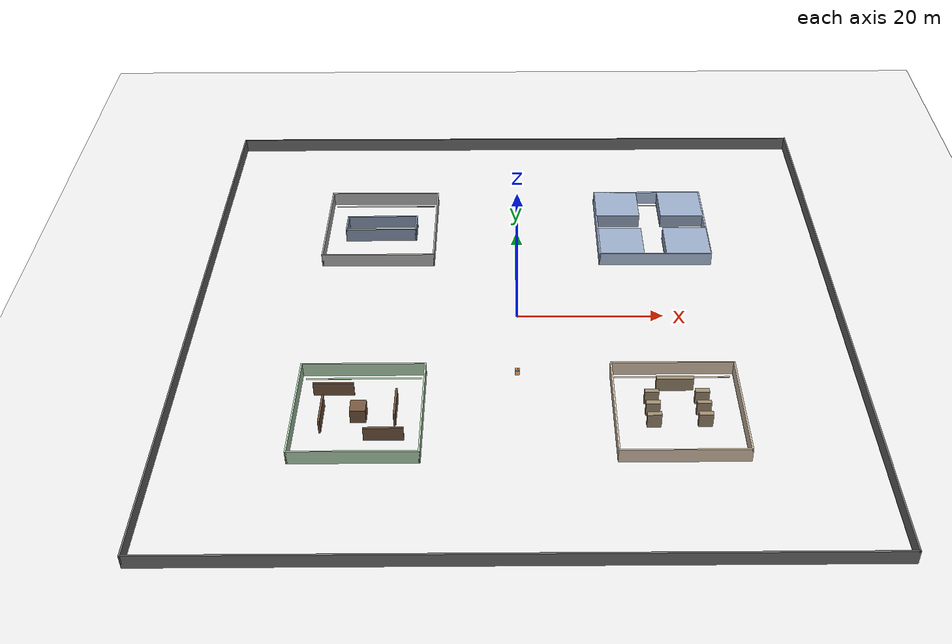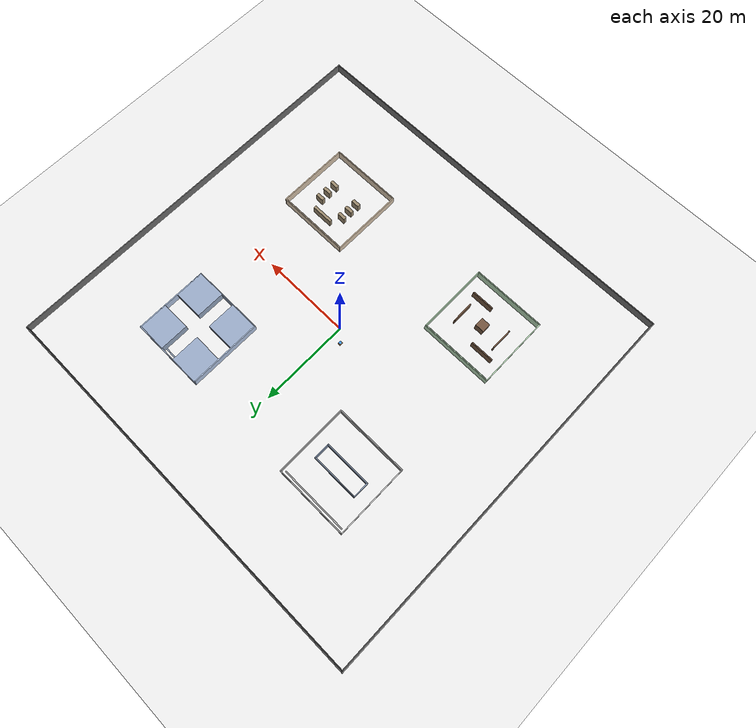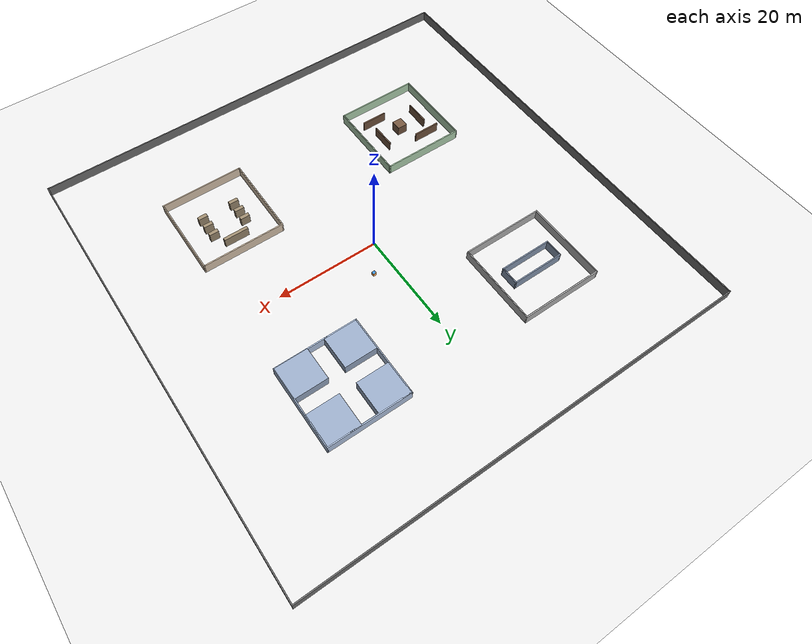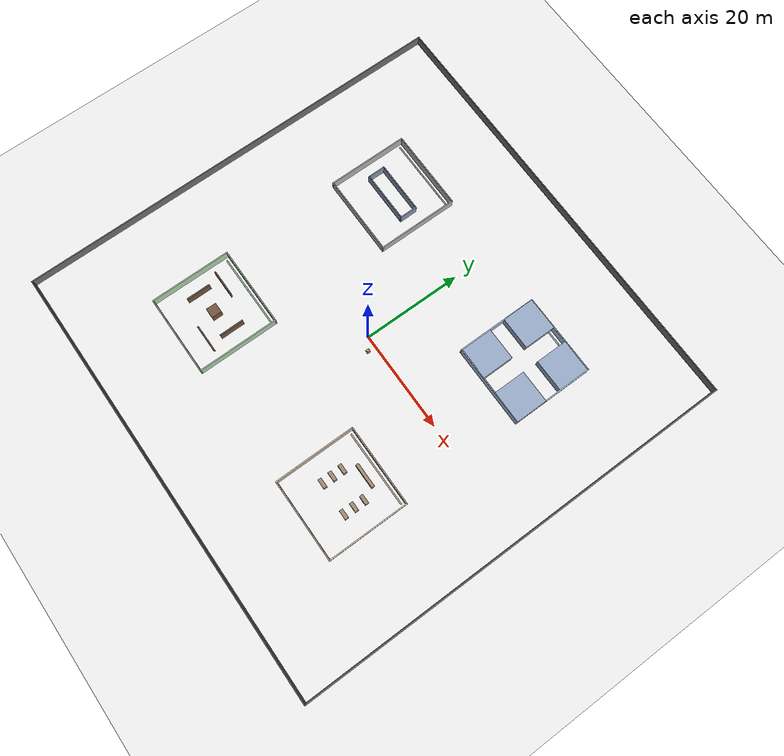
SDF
<sdf version="1.9">
 <world name="big4_dynamic">
  <physics name="1ms" type="ignored">
   <max_step_size>0.001</max_step_size>
   <real_time_factor>1</real_time_factor>
   <real_time_update_rate>1000</real_time_update_rate>
  </physics>
  <plugin name="ignition::gazebo::systems::Physics" filename="ignition-gazebo-physics-system"/>
  <plugin name="ignition::gazebo::systems::UserCommands" filename="ignition-gazebo-user-commands-system"/>
  <plugin name="ignition::gazebo::systems::SceneBroadcaster" filename="ignition-gazebo-scene-broadcaster-system"/>
  <plugin name="ignition::gazebo::systems::Contact" filename="ignition-gazebo-contact-system"/>
  <gravity>0 0 -9.8</gravity>
  <scene>
   <ambient>0.45 0.45 0.45 1</ambient>
   <background>0.78 0.78 0.78 1</background>
   <shadows>true</shadows>
  </scene>
  <light name="sun" type="directional">
   <pose>0 0 16 0 0 0</pose>
   <intensity>1.1</intensity>
   <direction>-0.45 0.15 -0.88</direction>
   <diffuse>0.95 0.95 0.95 1</diffuse>
   <specular>0.2 0.2 0.2 1</specular>
  </light>
  <model name="ground_plane">
   <static>true</static>
   <link name="link">
    <collision name="collision">
     <geometry><plane><normal>0 0 1</normal><size>140.0 140.0</size></plane></geometry>
    </collision>
    <visual name="visual">
     <geometry><plane><normal>0 0 1</normal><size>140.0 140.0</size></plane></geometry>
     <material>
      <ambient>0.84 0.84 0.84 1</ambient>
      <diffuse>0.84 0.84 0.84 1</diffuse>
      <specular>0.2 0.2 0.2 1</specular>
     </material>
    </visual>
   </link>
  </model>
  <model name="outer_border">
   <static>true</static>
   <link name="wall_west">
    <pose>-44.000 0.000 1.000 0.000 0.000 0.000</pose>
    <collision name="col"><geometry><box><size>0.200 88.200 2.000</size></box></geometry></collision>
    <visual name="vis">
     <geometry><box><size>0.200 88.200 2.000</size></box></geometry>
     <material><ambient>0.45 0.45 0.45 1</ambient><diffuse>0.45 0.45 0.45 1</diffuse></material>
    </visual>
   </link>
   <link name="wall_east">
    <pose>44.000 0.000 1.000 0.000 0.000 0.000</pose>
    <collision name="col"><geometry><box><size>0.200 88.200 2.000</size></box></geometry></collision>
    <visual name="vis">
     <geometry><box><size>0.200 88.200 2.000</size></box></geometry>
     <material><ambient>0.45 0.45 0.45 1</ambient><diffuse>0.45 0.45 0.45 1</diffuse></material>
    </visual>
   </link>
   <link name="wall_north">
    <pose>0.000 44.000 1.000 0.000 0.000 0.000</pose>
    <collision name="col"><geometry><box><size>88.200 0.200 2.000</size></box></geometry></collision>
    <visual name="vis">
     <geometry><box><size>88.200 0.200 2.000</size></box></geometry>
     <material><ambient>0.45 0.45 0.45 1</ambient><diffuse>0.45 0.45 0.45 1</diffuse></material>
    </visual>
   </link>
   <link name="wall_south">
    <pose>0.000 -44.000 1.000 0.000 0.000 0.000</pose>
    <collision name="col"><geometry><box><size>88.200 0.200 2.000</size></box></geometry></collision>
    <visual name="vis">
     <geometry><box><size>88.200 0.200 2.000</size></box></geometry>
     <material><ambient>0.45 0.45 0.45 1</ambient><diffuse>0.45 0.45 0.45 1</diffuse></material>
    </visual>
   </link>
  </model>
  <model name="corridor_frame">
   <static>true</static>
   <link name="west">
    <pose>-28.000 20.000 1.000 0.000 0.000 0.000</pose>
    <collision name="col"><geometry><box><size>0.200 16.200 2.000</size></box></geometry></collision>
    <visual name="vis">
     <geometry><box><size>0.200 16.200 2.000</size></box></geometry>
     <material><ambient>0.73 0.73 0.73 1</ambient><diffuse>0.73 0.73 0.73 1</diffuse></material>
    </visual>
   </link>
   <link name="east">
    <pose>-12.000 20.000 1.000 0.000 0.000 0.000</pose>
    <collision name="col"><geometry><box><size>0.200 16.200 2.000</size></box></geometry></collision>
    <visual name="vis">
     <geometry><box><size>0.200 16.200 2.000</size></box></geometry>
     <material><ambient>0.73 0.73 0.73 1</ambient><diffuse>0.73 0.73 0.73 1</diffuse></material>
    </visual>
   </link>
   <link name="north">
    <pose>-20.000 28.000 1.000 0.000 0.000 0.000</pose>
    <collision name="col"><geometry><box><size>16.200 0.200 2.000</size></box></geometry></collision>
    <visual name="vis">
     <geometry><box><size>16.200 0.200 2.000</size></box></geometry>
     <material><ambient>0.73 0.73 0.73 1</ambient><diffuse>0.73 0.73 0.73 1</diffuse></material>
    </visual>
   </link>
   <link name="south">
    <pose>-20.000 12.000 1.000 0.000 0.000 0.000</pose>
    <collision name="col"><geometry><box><size>16.200 0.200 2.000</size></box></geometry></collision>
    <visual name="vis">
     <geometry><box><size>16.200 0.200 2.000</size></box></geometry>
     <material><ambient>0.73 0.73 0.73 1</ambient><diffuse>0.73 0.73 0.73 1</diffuse></material>
    </visual>
   </link>
  </model>
  <model name="corridor_marker">
   <static>true</static>
   <pose>-20.000 27.300 0.01 0 0 0</pose>
   <link name="link">
    <visual name="vis">
     <geometry><box><size>15.000 0.25 0.02</size></box></geometry>
     <material><ambient>0.73 0.73 0.73 1</ambient><diffuse>0.73 0.73 0.73 1</diffuse></material>
    </visual>
   </link>
  </model>
  <model name="intersection_frame">
   <static>true</static>
   <link name="west">
    <pose>12.000 20.000 1.000 0.000 0.000 0.000</pose>
    <collision name="col"><geometry><box><size>0.200 16.200 2.000</size></box></geometry></collision>
    <visual name="vis">
     <geometry><box><size>0.200 16.200 2.000</size></box></geometry>
     <material><ambient>0.72 0.80 0.92 1</ambient><diffuse>0.72 0.80 0.92 1</diffuse></material>
    </visual>
   </link>
   <link name="east">
    <pose>28.000 20.000 1.000 0.000 0.000 0.000</pose>
    <collision name="col"><geometry><box><size>0.200 16.200 2.000</size></box></geometry></collision>
    <visual name="vis">
     <geometry><box><size>0.200 16.200 2.000</size></box></geometry>
     <material><ambient>0.72 0.80 0.92 1</ambient><diffuse>0.72 0.80 0.92 1</diffuse></material>
    </visual>
   </link>
   <link name="north">
    <pose>20.000 28.000 1.000 0.000 0.000 0.000</pose>
    <collision name="col"><geometry><box><size>16.200 0.200 2.000</size></box></geometry></collision>
    <visual name="vis">
     <geometry><box><size>16.200 0.200 2.000</size></box></geometry>
     <material><ambient>0.72 0.80 0.92 1</ambient><diffuse>0.72 0.80 0.92 1</diffuse></material>
    </visual>
   </link>
   <link name="south">
    <pose>20.000 12.000 1.000 0.000 0.000 0.000</pose>
    <collision name="col"><geometry><box><size>16.200 0.200 2.000</size></box></geometry></collision>
    <visual name="vis">
     <geometry><box><size>16.200 0.200 2.000</size></box></geometry>
     <material><ambient>0.72 0.80 0.92 1</ambient><diffuse>0.72 0.80 0.92 1</diffuse></material>
    </visual>
   </link>
  </model>
  <model name="intersection_marker">
   <static>true</static>
   <pose>20.000 27.300 0.01 0 0 0</pose>
   <link name="link">
    <visual name="vis">
     <geometry><box><size>15.000 0.25 0.02</size></box></geometry>
     <material><ambient>0.72 0.80 0.92 1</ambient><diffuse>0.72 0.80 0.92 1</diffuse></material>
    </visual>
   </link>
  </model>
  <model name="office_frame">
   <static>true</static>
   <link name="west">
    <pose>-28.000 -20.000 1.000 0.000 0.000 0.000</pose>
    <collision name="col"><geometry><box><size>0.200 16.200 2.000</size></box></geometry></collision>
    <visual name="vis">
     <geometry><box><size>0.200 16.200 2.000</size></box></geometry>
     <material><ambient>0.72 0.86 0.72 1</ambient><diffuse>0.72 0.86 0.72 1</diffuse></material>
    </visual>
   </link>
   <link name="east">
    <pose>-12.000 -20.000 1.000 0.000 0.000 0.000</pose>
    <collision name="col"><geometry><box><size>0.200 16.200 2.000</size></box></geometry></collision>
    <visual name="vis">
     <geometry><box><size>0.200 16.200 2.000</size></box></geometry>
     <material><ambient>0.72 0.86 0.72 1</ambient><diffuse>0.72 0.86 0.72 1</diffuse></material>
    </visual>
   </link>
   <link name="north">
    <pose>-20.000 -12.000 1.000 0.000 0.000 0.000</pose>
    <collision name="col"><geometry><box><size>16.200 0.200 2.000</size></box></geometry></collision>
    <visual name="vis">
     <geometry><box><size>16.200 0.200 2.000</size></box></geometry>
     <material><ambient>0.72 0.86 0.72 1</ambient><diffuse>0.72 0.86 0.72 1</diffuse></material>
    </visual>
   </link>
   <link name="south">
    <pose>-20.000 -28.000 1.000 0.000 0.000 0.000</pose>
    <collision name="col"><geometry><box><size>16.200 0.200 2.000</size></box></geometry></collision>
    <visual name="vis">
     <geometry><box><size>16.200 0.200 2.000</size></box></geometry>
     <material><ambient>0.72 0.86 0.72 1</ambient><diffuse>0.72 0.86 0.72 1</diffuse></material>
    </visual>
   </link>
  </model>
  <model name="office_marker">
   <static>true</static>
   <pose>-20.000 -12.700 0.01 0 0 0</pose>
   <link name="link">
    <visual name="vis">
     <geometry><box><size>15.000 0.25 0.02</size></box></geometry>
     <material><ambient>0.72 0.86 0.72 1</ambient><diffuse>0.72 0.86 0.72 1</diffuse></material>
    </visual>
   </link>
  </model>
  <model name="classroom_frame">
   <static>true</static>
   <link name="west">
    <pose>12.000 -20.000 1.000 0.000 0.000 0.000</pose>
    <collision name="col"><geometry><box><size>0.200 16.200 2.000</size></box></geometry></collision>
    <visual name="vis">
     <geometry><box><size>0.200 16.200 2.000</size></box></geometry>
     <material><ambient>0.88 0.80 0.70 1</ambient><diffuse>0.88 0.80 0.70 1</diffuse></material>
    </visual>
   </link>
   <link name="east">
    <pose>28.000 -20.000 1.000 0.000 0.000 0.000</pose>
    <collision name="col"><geometry><box><size>0.200 16.200 2.000</size></box></geometry></collision>
    <visual name="vis">
     <geometry><box><size>0.200 16.200 2.000</size></box></geometry>
     <material><ambient>0.88 0.80 0.70 1</ambient><diffuse>0.88 0.80 0.70 1</diffuse></material>
    </visual>
   </link>
   <link name="north">
    <pose>20.000 -12.000 1.000 0.000 0.000 0.000</pose>
    <collision name="col"><geometry><box><size>16.200 0.200 2.000</size></box></geometry></collision>
    <visual name="vis">
     <geometry><box><size>16.200 0.200 2.000</size></box></geometry>
     <material><ambient>0.88 0.80 0.70 1</ambient><diffuse>0.88 0.80 0.70 1</diffuse></material>
    </visual>
   </link>
   <link name="south">
    <pose>20.000 -28.000 1.000 0.000 0.000 0.000</pose>
    <collision name="col"><geometry><box><size>16.200 0.200 2.000</size></box></geometry></collision>
    <visual name="vis">
     <geometry><box><size>16.200 0.200 2.000</size></box></geometry>
     <material><ambient>0.88 0.80 0.70 1</ambient><diffuse>0.88 0.80 0.70 1</diffuse></material>
    </visual>
   </link>
  </model>
  <model name="classroom_marker">
   <static>true</static>
   <pose>20.000 -12.700 0.01 0 0 0</pose>
   <link name="link">
    <visual name="vis">
     <geometry><box><size>15.000 0.25 0.02</size></box></geometry>
     <material><ambient>0.88 0.80 0.70 1</ambient><diffuse>0.88 0.80 0.70 1</diffuse></material>
    </visual>
   </link>
  </model>
  <model name="corridor_inner_walls">
   <static>true</static>
   <link name="north_wall">
    <pose>-20.000 21.700 1.000 0 0 0</pose>
    <collision name="c"><geometry><box><size>10.400 0.200 2.000</size></box></geometry></collision>
    <visual name="v">
     <geometry><box><size>10.400 0.200 2.000</size></box></geometry>
     <material><ambient>0.55 0.62 0.72 1</ambient><diffuse>0.55 0.62 0.72 1</diffuse></material>
    </visual>
   </link>
   <link name="south_wall">
    <pose>-20.000 18.300 1.000 0 0 0</pose>
    <collision name="c"><geometry><box><size>10.400 0.200 2.000</size></box></geometry></collision>
    <visual name="v">
     <geometry><box><size>10.400 0.200 2.000</size></box></geometry>
     <material><ambient>0.55 0.62 0.72 1</ambient><diffuse>0.55 0.62 0.72 1</diffuse></material>
    </visual>
   </link>
   <link name="west_cap">
    <pose>-25.100 20.000 1.000 0 0 0</pose>
    <collision name="c"><geometry><box><size>0.200 3.600 2.000</size></box></geometry></collision>
    <visual name="v">
     <geometry><box><size>0.200 3.600 2.000</size></box></geometry>
     <material><ambient>0.55 0.62 0.72 1</ambient><diffuse>0.55 0.62 0.72 1</diffuse></material>
    </visual>
   </link>
   <link name="east_cap">
    <pose>-14.900 20.000 1.000 0 0 0</pose>
    <collision name="c"><geometry><box><size>0.200 3.600 2.000</size></box></geometry></collision>
    <visual name="v">
     <geometry><box><size>0.200 3.600 2.000</size></box></geometry>
     <material><ambient>0.55 0.62 0.72 1</ambient><diffuse>0.55 0.62 0.72 1</diffuse></material>
    </visual>
   </link>
  </model>
  <model name="intersection_corner_blocks">
   <static>true</static>
   <link name="corner_0">
    <pose>15.200 15.200 1.000 0.000 0.000 0.000</pose>
    <collision name="col"><geometry><box><size>6.400 6.400 2.000</size></box></geometry></collision>
    <visual name="vis">
     <geometry><box><size>6.400 6.400 2.000</size></box></geometry>
     <material><ambient>0.60 0.67 0.78 1</ambient><diffuse>0.60 0.67 0.78 1</diffuse></material>
    </visual>
   </link>
   <link name="corner_1">
    <pose>15.200 24.800 1.000 0.000 0.000 0.000</pose>
    <collision name="col"><geometry><box><size>6.400 6.400 2.000</size></box></geometry></collision>
    <visual name="vis">
     <geometry><box><size>6.400 6.400 2.000</size></box></geometry>
     <material><ambient>0.60 0.67 0.78 1</ambient><diffuse>0.60 0.67 0.78 1</diffuse></material>
    </visual>
   </link>
   <link name="corner_2">
    <pose>24.800 15.200 1.000 0.000 0.000 0.000</pose>
    <collision name="col"><geometry><box><size>6.400 6.400 2.000</size></box></geometry></collision>
    <visual name="vis">
     <geometry><box><size>6.400 6.400 2.000</size></box></geometry>
     <material><ambient>0.60 0.67 0.78 1</ambient><diffuse>0.60 0.67 0.78 1</diffuse></material>
    </visual>
   </link>
   <link name="corner_3">
    <pose>24.800 24.800 1.000 0.000 0.000 0.000</pose>
    <collision name="col"><geometry><box><size>6.400 6.400 2.000</size></box></geometry></collision>
    <visual name="vis">
     <geometry><box><size>6.400 6.400 2.000</size></box></geometry>
     <material><ambient>0.60 0.67 0.78 1</ambient><diffuse>0.60 0.67 0.78 1</diffuse></material>
    </visual>
   </link>
  </model>
  <model name="office_fixed_structures">
   <static>true</static>
   <link name="center_island">
    <pose>-20.000 -20.000 1.000 0 0 0</pose>
    <collision name="c"><geometry><box><size>2.0 2.0 2.000</size></box></geometry></collision>
    <visual name="v">
     <geometry><box><size>2.0 2.0 2.000</size></box></geometry>
     <material><ambient>0.46 0.34 0.25 1</ambient><diffuse>0.46 0.34 0.25 1</diffuse></material>
    </visual>
   </link>
   <link name="north_partition">
    <pose>-23.500 -15.800 1.000 0 0 0</pose>
    <collision name="c"><geometry><box><size>5.2 0.25 2.000</size></box></geometry></collision>
    <visual name="v">
     <geometry><box><size>5.2 0.25 2.000</size></box></geometry>
     <material><ambient>0.46 0.34 0.25 1</ambient><diffuse>0.46 0.34 0.25 1</diffuse></material>
    </visual>
   </link>
   <link name="south_partition">
    <pose>-16.600 -24.000 1.000 0 0 0</pose>
    <collision name="c"><geometry><box><size>5.0 0.25 2.000</size></box></geometry></collision>
    <visual name="v">
     <geometry><box><size>5.0 0.25 2.000</size></box></geometry>
     <material><ambient>0.46 0.34 0.25 1</ambient><diffuse>0.46 0.34 0.25 1</diffuse></material>
    </visual>
   </link>
   <link name="west_partition">
    <pose>-24.600 -20.400 1.000 0 0 0</pose>
    <collision name="c"><geometry><box><size>0.25 4.8 2.000</size></box></geometry></collision>
    <visual name="v">
     <geometry><box><size>0.25 4.8 2.000</size></box></geometry>
     <material><ambient>0.46 0.34 0.25 1</ambient><diffuse>0.46 0.34 0.25 1</diffuse></material>
    </visual>
   </link>
   <link name="east_partition">
    <pose>-15.400 -19.200 1.000 0 0 0</pose>
    <collision name="c"><geometry><box><size>0.25 4.8 2.000</size></box></geometry></collision>
    <visual name="v">
     <geometry><box><size>0.25 4.8 2.000</size></box></geometry>
     <material><ambient>0.46 0.34 0.25 1</ambient><diffuse>0.46 0.34 0.25 1</diffuse></material>
    </visual>
   </link>
  </model>
  <model name="classroom_fixed_structures">
   <static>true</static>
   <link name="front_podium">
    <pose>20.000 -15.000 1.000 0 0 0</pose>
    <collision name="c"><geometry><box><size>4.8 0.6 2.000</size></box></geometry></collision>
    <visual name="v">
     <geometry><box><size>4.8 0.6 2.000</size></box></geometry>
     <material><ambient>0.62 0.55 0.44 1</ambient><diffuse>0.62 0.55 0.44 1</diffuse></material>
    </visual>
   </link>
   <link name="desk_0">
    <pose>16.800 -17.500 1.000 0 0 0</pose>
    <collision name="c"><geometry><box><size>1.8 0.7 2.000</size></box></geometry></collision>
    <visual name="v">
     <geometry><box><size>1.8 0.7 2.000</size></box></geometry>
     <material><ambient>0.62 0.55 0.44 1</ambient><diffuse>0.62 0.55 0.44 1</diffuse></material>
    </visual>
   </link>
   <link name="desk_1">
    <pose>16.800 -19.600 1.000 0 0 0</pose>
    <collision name="c"><geometry><box><size>1.8 0.7 2.000</size></box></geometry></collision>
    <visual name="v">
     <geometry><box><size>1.8 0.7 2.000</size></box></geometry>
     <material><ambient>0.62 0.55 0.44 1</ambient><diffuse>0.62 0.55 0.44 1</diffuse></material>
    </visual>
   </link>
   <link name="desk_2">
    <pose>16.800 -21.700 1.000 0 0 0</pose>
    <collision name="c"><geometry><box><size>1.8 0.7 2.000</size></box></geometry></collision>
    <visual name="v">
     <geometry><box><size>1.8 0.7 2.000</size></box></geometry>
     <material><ambient>0.62 0.55 0.44 1</ambient><diffuse>0.62 0.55 0.44 1</diffuse></material>
    </visual>
   </link>
   <link name="desk_3">
    <pose>23.200 -17.500 1.000 0 0 0</pose>
    <collision name="c"><geometry><box><size>1.8 0.7 2.000</size></box></geometry></collision>
    <visual name="v">
     <geometry><box><size>1.8 0.7 2.000</size></box></geometry>
     <material><ambient>0.62 0.55 0.44 1</ambient><diffuse>0.62 0.55 0.44 1</diffuse></material>
    </visual>
   </link>
   <link name="desk_4">
    <pose>23.200 -19.600 1.000 0 0 0</pose>
    <collision name="c"><geometry><box><size>1.8 0.7 2.000</size></box></geometry></collision>
    <visual name="v">
     <geometry><box><size>1.8 0.7 2.000</size></box></geometry>
     <material><ambient>0.62 0.55 0.44 1</ambient><diffuse>0.62 0.55 0.44 1</diffuse></material>
    </visual>
   </link>
   <link name="desk_5">
    <pose>23.200 -21.700 1.000 0 0 0</pose>
    <collision name="c"><geometry><box><size>1.8 0.7 2.000</size></box></geometry></collision>
    <visual name="v">
     <geometry><box><size>1.8 0.7 2.000</size></box></geometry>
     <material><ambient>0.62 0.55 0.44 1</ambient><diffuse>0.62 0.55 0.44 1</diffuse></material>
    </visual>
   </link>
  </model>
  <model name="corridor_box_0">
   <pose>0 0 -10.000 0 0 0</pose>
   <static>true</static>
   <link name="link">
    <visual name="vis">
     <geometry><box><size>0.700 0.700 0.700</size></box></geometry>
     <material><ambient>1 0.50 0 1</ambient><diffuse>1 0.50 0 1</diffuse></material>
    </visual>
    <collision name="col"><geometry><box><size>0.700 0.700 0.700</size></box></geometry></collision>
   </link>
  </model>
  <model name="corridor_box_1">
   <pose>0 0 -10.000 0 0 0</pose>
   <static>true</static>
   <link name="link">
    <visual name="vis">
     <geometry><box><size>0.700 0.700 0.700</size></box></geometry>
     <material><ambient>1 0.50 0 1</ambient><diffuse>1 0.50 0 1</diffuse></material>
    </visual>
    <collision name="col"><geometry><box><size>0.700 0.700 0.700</size></box></geometry></collision>
   </link>
  </model>
  <model name="corridor_box_2">
   <pose>0 0 -10.000 0 0 0</pose>
   <static>true</static>
   <link name="link">
    <visual name="vis">
     <geometry><box><size>0.700 0.700 0.700</size></box></geometry>
     <material><ambient>1 0.50 0 1</ambient><diffuse>1 0.50 0 1</diffuse></material>
    </visual>
    <collision name="col"><geometry><box><size>0.700 0.700 0.700</size></box></geometry></collision>
   </link>
  </model>
  <model name="corridor_cyl_0">
   <pose>0 0 -10.000 0 0 0</pose>
   <static>true</static>
   <link name="link">
    <visual name="vis">
     <geometry><cylinder><radius>0.350</radius><length>0.700</length></cylinder></geometry>
     <material><ambient>0 0.50 1 1</ambient><diffuse>0 0.50 1 1</diffuse></material>
    </visual>
    <collision name="col">
     <geometry><cylinder><radius>0.350</radius><length>0.700</length></cylinder></geometry>
    </collision>
   </link>
  </model>
  <model name="intersection_box_0">
   <pose>0 0 -10.000 0 0 0</pose>
   <static>true</static>
   <link name="link">
    <visual name="vis">
     <geometry><box><size>0.700 0.700 0.700</size></box></geometry>
     <material><ambient>1 0.50 0 1</ambient><diffuse>1 0.50 0 1</diffuse></material>
    </visual>
    <collision name="col"><geometry><box><size>0.700 0.700 0.700</size></box></geometry></collision>
   </link>
  </model>
  <model name="intersection_box_1">
   <pose>0 0 -10.000 0 0 0</pose>
   <static>true</static>
   <link name="link">
    <visual name="vis">
     <geometry><box><size>0.700 0.700 0.700</size></box></geometry>
     <material><ambient>1 0.50 0 1</ambient><diffuse>1 0.50 0 1</diffuse></material>
    </visual>
    <collision name="col"><geometry><box><size>0.700 0.700 0.700</size></box></geometry></collision>
   </link>
  </model>
  <model name="intersection_box_2">
   <pose>0 0 -10.000 0 0 0</pose>
   <static>true</static>
   <link name="link">
    <visual name="vis">
     <geometry><box><size>0.700 0.700 0.700</size></box></geometry>
     <material><ambient>1 0.50 0 1</ambient><diffuse>1 0.50 0 1</diffuse></material>
    </visual>
    <collision name="col"><geometry><box><size>0.700 0.700 0.700</size></box></geometry></collision>
   </link>
  </model>
  <model name="intersection_cyl_0">
   <pose>0 0 -10.000 0 0 0</pose>
   <static>true</static>
   <link name="link">
    <visual name="vis">
     <geometry><cylinder><radius>0.350</radius><length>0.700</length></cylinder></geometry>
     <material><ambient>0 0.50 1 1</ambient><diffuse>0 0.50 1 1</diffuse></material>
    </visual>
    <collision name="col">
     <geometry><cylinder><radius>0.350</radius><length>0.700</length></cylinder></geometry>
    </collision>
   </link>
  </model>
  <model name="office_box_0">
   <pose>0 0 -10.000 0 0 0</pose>
   <static>true</static>
   <link name="link">
    <visual name="vis">
     <geometry><box><size>0.700 0.700 0.700</size></box></geometry>
     <material><ambient>1 0.50 0 1</ambient><diffuse>1 0.50 0 1</diffuse></material>
    </visual>
    <collision name="col"><geometry><box><size>0.700 0.700 0.700</size></box></geometry></collision>
   </link>
  </model>
  <model name="office_box_1">
   <pose>0 0 -10.000 0 0 0</pose>
   <static>true</static>
   <link name="link">
    <visual name="vis">
     <geometry><box><size>0.700 0.700 0.700</size></box></geometry>
     <material><ambient>1 0.50 0 1</ambient><diffuse>1 0.50 0 1</diffuse></material>
    </visual>
    <collision name="col"><geometry><box><size>0.700 0.700 0.700</size></box></geometry></collision>
   </link>
  </model>
  <model name="office_box_2">
   <pose>0 0 -10.000 0 0 0</pose>
   <static>true</static>
   <link name="link">
    <visual name="vis">
     <geometry><box><size>0.700 0.700 0.700</size></box></geometry>
     <material><ambient>1 0.50 0 1</ambient><diffuse>1 0.50 0 1</diffuse></material>
    </visual>
    <collision name="col"><geometry><box><size>0.700 0.700 0.700</size></box></geometry></collision>
   </link>
  </model>
  <model name="office_box_3">
   <pose>0 0 -10.000 0 0 0</pose>
   <static>true</static>
   <link name="link">
    <visual name="vis">
     <geometry><box><size>0.700 0.700 0.700</size></box></geometry>
     <material><ambient>1 0.50 0 1</ambient><diffuse>1 0.50 0 1</diffuse></material>
    </visual>
    <collision name="col"><geometry><box><size>0.700 0.700 0.700</size></box></geometry></collision>
   </link>
  </model>
  <model name="office_box_4">
   <pose>0 0 -10.000 0 0 0</pose>
   <static>true</static>
   <link name="link">
    <visual name="vis">
     <geometry><box><size>0.700 0.700 0.700</size></box></geometry>
     <material><ambient>1 0.50 0 1</ambient><diffuse>1 0.50 0 1</diffuse></material>
    </visual>
    <collision name="col"><geometry><box><size>0.700 0.700 0.700</size></box></geometry></collision>
   </link>
  </model>
  <model name="office_box_5">
   <pose>0 0 -10.000 0 0 0</pose>
   <static>true</static>
   <link name="link">
    <visual name="vis">
     <geometry><box><size>0.700 0.700 0.700</size></box></geometry>
     <material><ambient>1 0.50 0 1</ambient><diffuse>1 0.50 0 1</diffuse></material>
    </visual>
    <collision name="col"><geometry><box><size>0.700 0.700 0.700</size></box></geometry></collision>
   </link>
  </model>
  <model name="office_cyl_0">
   <pose>0 0 -10.000 0 0 0</pose>
   <static>true</static>
   <link name="link">
    <visual name="vis">
     <geometry><cylinder><radius>0.350</radius><length>0.700</length></cylinder></geometry>
     <material><ambient>0 0.50 1 1</ambient><diffuse>0 0.50 1 1</diffuse></material>
    </visual>
    <collision name="col">
     <geometry><cylinder><radius>0.350</radius><length>0.700</length></cylinder></geometry>
    </collision>
   </link>
  </model>
  <model name="office_cyl_1">
   <pose>0 0 -10.000 0 0 0</pose>
   <static>true</static>
   <link name="link">
    <visual name="vis">
     <geometry><cylinder><radius>0.350</radius><length>0.700</length></cylinder></geometry>
     <material><ambient>0 0.50 1 1</ambient><diffuse>0 0.50 1 1</diffuse></material>
    </visual>
    <collision name="col">
     <geometry><cylinder><radius>0.350</radius><length>0.700</length></cylinder></geometry>
    </collision>
   </link>
  </model>
  <model name="office_cyl_2">
   <pose>0 0 -10.000 0 0 0</pose>
   <static>true</static>
   <link name="link">
    <visual name="vis">
     <geometry><cylinder><radius>0.350</radius><length>0.700</length></cylinder></geometry>
     <material><ambient>0 0.50 1 1</ambient><diffuse>0 0.50 1 1</diffuse></material>
    </visual>
    <collision name="col">
     <geometry><cylinder><radius>0.350</radius><length>0.700</length></cylinder></geometry>
    </collision>
   </link>
  </model>
  <model name="classroom_box_0">
   <pose>0 0 -10.000 0 0 0</pose>
   <static>true</static>
   <link name="link">
    <visual name="vis">
     <geometry><box><size>0.700 0.700 0.700</size></box></geometry>
     <material><ambient>1 0.50 0 1</ambient><diffuse>1 0.50 0 1</diffuse></material>
    </visual>
    <collision name="col"><geometry><box><size>0.700 0.700 0.700</size></box></geometry></collision>
   </link>
  </model>
  <model name="classroom_box_1">
   <pose>0 0 -10.000 0 0 0</pose>
   <static>true</static>
   <link name="link">
    <visual name="vis">
     <geometry><box><size>0.700 0.700 0.700</size></box></geometry>
     <material><ambient>1 0.50 0 1</ambient><diffuse>1 0.50 0 1</diffuse></material>
    </visual>
    <collision name="col"><geometry><box><size>0.700 0.700 0.700</size></box></geometry></collision>
   </link>
  </model>
  <model name="classroom_box_2">
   <pose>0 0 -10.000 0 0 0</pose>
   <static>true</static>
   <link name="link">
    <visual name="vis">
     <geometry><box><size>0.700 0.700 0.700</size></box></geometry>
     <material><ambient>1 0.50 0 1</ambient><diffuse>1 0.50 0 1</diffuse></material>
    </visual>
    <collision name="col"><geometry><box><size>0.700 0.700 0.700</size></box></geometry></collision>
   </link>
  </model>
  <model name="classroom_box_3">
   <pose>0 0 -10.000 0 0 0</pose>
   <static>true</static>
   <link name="link">
    <visual name="vis">
     <geometry><box><size>0.700 0.700 0.700</size></box></geometry>
     <material><ambient>1 0.50 0 1</ambient><diffuse>1 0.50 0 1</diffuse></material>
    </visual>
    <collision name="col"><geometry><box><size>0.700 0.700 0.700</size></box></geometry></collision>
   </link>
  </model>
  <model name="classroom_box_4">
   <pose>0 0 -10.000 0 0 0</pose>
   <static>true</static>
   <link name="link">
    <visual name="vis">
     <geometry><box><size>0.700 0.700 0.700</size></box></geometry>
     <material><ambient>1 0.50 0 1</ambient><diffuse>1 0.50 0 1</diffuse></material>
    </visual>
    <collision name="col"><geometry><box><size>0.700 0.700 0.700</size></box></geometry></collision>
   </link>
  </model>
  <model name="classroom_cyl_0">
   <pose>0 0 -10.000 0 0 0</pose>
   <static>true</static>
   <link name="link">
    <visual name="vis">
     <geometry><cylinder><radius>0.350</radius><length>0.700</length></cylinder></geometry>
     <material><ambient>0 0.50 1 1</ambient><diffuse>0 0.50 1 1</diffuse></material>
    </visual>
    <collision name="col">
     <geometry><cylinder><radius>0.350</radius><length>0.700</length></cylinder></geometry>
    </collision>
   </link>
  </model>
  <model name="classroom_cyl_1">
   <pose>0 0 -10.000 0 0 0</pose>
   <static>true</static>
   <link name="link">
    <visual name="vis">
     <geometry><cylinder><radius>0.350</radius><length>0.700</length></cylinder></geometry>
     <material><ambient>0 0.50 1 1</ambient><diffuse>0 0.50 1 1</diffuse></material>
    </visual>
    <collision name="col">
     <geometry><cylinder><radius>0.350</radius><length>0.700</length></cylinder></geometry>
    </collision>
   </link>
  </model>
  <model name="classroom_cyl_2">
   <pose>0 0 -10.000 0 0 0</pose>
   <static>true</static>
   <link name="link">
    <visual name="vis">
     <geometry><cylinder><radius>0.350</radius><length>0.700</length></cylinder></geometry>
     <material><ambient>0 0.50 1 1</ambient><diffuse>0 0.50 1 1</diffuse></material>
    </visual>
    <collision name="col">
     <geometry><cylinder><radius>0.350</radius><length>0.700</length></cylinder></geometry>
    </collision>
   </link>
  </model>
 </world>
</sdf>
